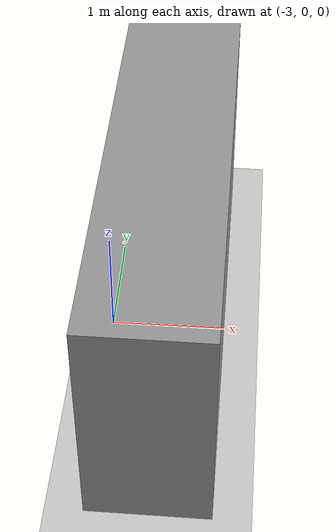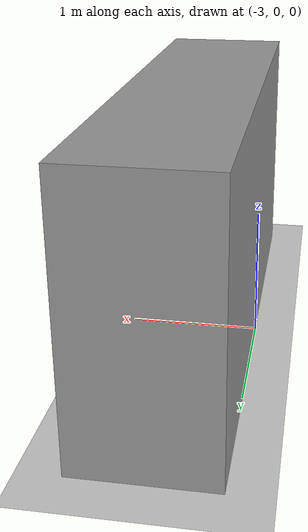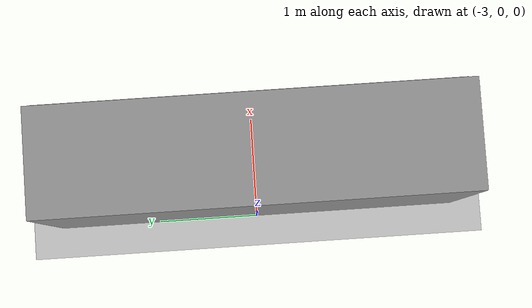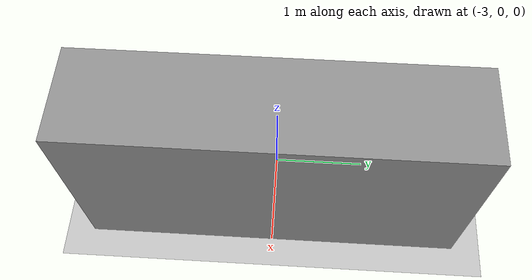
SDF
<?xml version="1.0" ?>
<sdf version="1.5">
  <world name="default">
    <!-- A global light source -->
    <include>
      <uri>model://sun</uri>
    </include>
    <!-- A ground plane -->
    <include>
      <uri>model://ground_plane</uri>
    </include>
    <include>
      <uri>model://asphalt_plane</uri>
      <pose frame=''>0 0 -0.055 0 0 0</pose>
    </include>

    <model name='unit_box'>
      <static>1</static>
      <pose frame=''>-2.5 0 1 0 0 0</pose>
      <link name='link'>
        <inertial>
          <mass>1</mass>
          <inertia>
            <ixx>0.166667</ixx>
            <ixy>0</ixy>
            <ixz>0</ixz>
            <iyy>0.166667</iyy>
            <iyz>0</iyz>
            <izz>0.166667</izz>
          </inertia>
          <pose frame=''>0 0 0 0 0 0</pose>
        </inertial>
        <collision name='collision'>
          <geometry>
            <box>
              <size>1 4 2</size>
            </box>
          </geometry>
          <max_contacts>10</max_contacts>
          <surface>
            <contact>
              <ode/>
            </contact>
            <bounce/>
            <friction>
              <torsional>
                <ode/>
              </torsional>
              <ode/>
            </friction>
          </surface>
        </collision>
        <visual name='visual'>
          <geometry>
            <box>
              <size>1 4 2</size>
            </box>
          </geometry>
          <material>
            <script>
              <name>Gazebo/Grey</name>
              <uri>file://media/materials/scripts/gazebo.material</uri>
            </script>
          </material>
        </visual>
        <self_collide>0</self_collide>
        <enable_wind>0</enable_wind>
        <kinematic>0</kinematic>
      </link>
    </model>

    <plugin name='gazebo_octomap' filename='librotors_gazebo_octomap_plugin.so'/>

    <!-- Only one ROS interface plugin is required per world, as any other plugin can connect a Gazebo
         topic to a ROS topic (or vise versa). -->
    <plugin name="ros_interface_plugin" filename="librotors_gazebo_ros_interface_plugin.so"/>

    <physics name='default_physics' default='0' type='ode'>
      <gravity>0 0 -9.8066</gravity>
      <ode>
        <solver>
          <type>quick</type>
          <iters>10</iters>
          <sor>1.3</sor>
          <use_dynamic_moi_rescaling>0</use_dynamic_moi_rescaling>
        </solver>
        <constraints>
          <cfm>0</cfm>
          <erp>0.2</erp>
          <contact_max_correcting_vel>100</contact_max_correcting_vel>
          <contact_surface_layer>0.001</contact_surface_layer>
        </constraints>
      </ode>
      <max_step_size>0.002</max_step_size>
      <real_time_factor>1</real_time_factor>
      <real_time_update_rate>500</real_time_update_rate>
      <magnetic_field>6e-06 2.3e-05 -4.2e-05</magnetic_field>
    </physics>
  </world>
</sdf>
